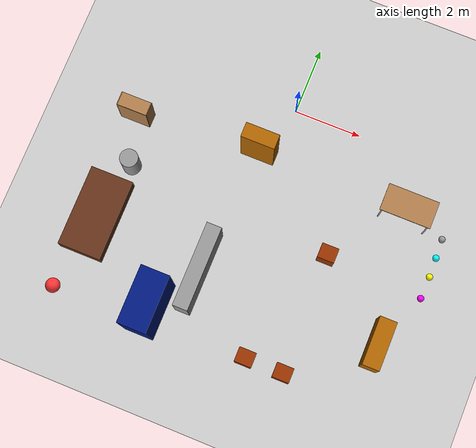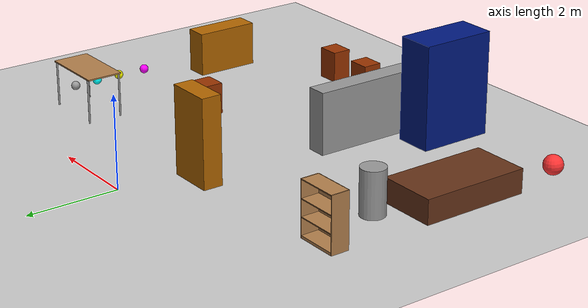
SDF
<sdf version="1.6">
 <world name="default">
  <model name="ground_plane">
   <static>1</static>
   <link name="link">
    <collision name="collision">
     <geometry><plane><normal>0 0 1</normal><size>100 100</size></plane></geometry>
     <surface><friction><ode><mu>100</mu><mu2>50</mu2></ode></friction></surface>
    </collision>
    <visual name="visual">
     <cast_shadows>0</cast_shadows>
     <geometry><plane><normal>0 0 1</normal><size>100 100</size></plane></geometry>
     <material>
      <script><uri>file://media/materials/scripts/gazebo.material</uri><name>Gazebo/Grey</name></script>
     </material>
    </visual>
   </link>
  </model>
  <model name="bookshelf_0">
   <static>1</static>
   <link name="link">
    <inertial><mass>1</mass></inertial>
    <collision name="back">
     <pose>0 0.005 0.6 0 -0 0</pose>
     <geometry><box><size>0.9 0.01 1.2</size></box></geometry>
    </collision>
    <visual name="visual1">
     <pose>0 0.005 0.6 0 -0 0</pose>
     <geometry><box><size>0.9 0.01 1.2</size></box></geometry>
     <material>
      <script><uri>file://media/materials/scripts/gazebo.material</uri><name>Gazebo/Wood</name></script>
     </material>
    </visual>
    <collision name="left_side">
     <pose>0.45 -0.195 0.6 0 -0 0</pose>
     <geometry><box><size>0.02 0.4 1.2</size></box></geometry>
    </collision>
    <visual name="visual2">
     <pose>0.45 -0.195 0.6 0 -0 0</pose>
     <geometry><box><size>0.02 0.4 1.2</size></box></geometry>
     <material>
      <script><uri>file://media/materials/scripts/gazebo.material</uri><name>Gazebo/Wood</name></script>
     </material>
    </visual>
    <collision name="right_side">
     <pose>-0.45 -0.195 0.6 0 -0 0</pose>
     <geometry><box><size>0.02 0.4 1.2</size></box></geometry>
    </collision>
    <visual name="visual3">
     <pose>-0.45 -0.195 0.6 0 -0 0</pose>
     <geometry><box><size>0.02 0.4 1.2</size></box></geometry>
     <material>
      <script><uri>file://media/materials/scripts/gazebo.material</uri><name>Gazebo/Wood</name></script>
     </material>
    </visual>
    <collision name="bottom">
     <pose>0 -0.195 0.03 0 -0 0</pose>
     <geometry><box><size>0.88 0.4 0.06</size></box></geometry>
    </collision>
    <visual name="visual4">
     <pose>0 -0.195 0.03 0 -0 0</pose>
     <geometry><box><size>0.88 0.4 0.06</size></box></geometry>
     <material>
      <script><uri>file://media/materials/scripts/gazebo.material</uri><name>Gazebo/Wood</name></script>
     </material>
    </visual>
    <collision name="top">
     <pose>0 -0.195 1.19 0 -0 0</pose>
     <geometry><box><size>0.88 0.4 0.02</size></box></geometry>
    </collision>
    <visual name="visual5">
     <pose>0 -0.195 1.19 0 -0 0</pose>
     <geometry><box><size>0.88 0.4 0.02</size></box></geometry>
     <material>
      <script><uri>file://media/materials/scripts/gazebo.material</uri><name>Gazebo/Wood</name></script>
     </material>
    </visual>
    <collision name="low_shelf">
     <pose>0 -0.195 0.43 0 -0 0</pose>
     <geometry><box><size>0.88 0.4 0.02</size></box></geometry>
    </collision>
    <visual name="visual6">
     <pose>0 -0.195 0.43 0 -0 0</pose>
     <geometry><box><size>0.88 0.4 0.02</size></box></geometry>
     <material>
      <script><uri>file://media/materials/scripts/gazebo.material</uri><name>Gazebo/Wood</name></script>
     </material>
    </visual>
    <collision name="high_shelf">
     <pose>0 -0.195 0.8 0 -0 0</pose>
     <geometry><box><size>0.88 0.4 0.02</size></box></geometry>
    </collision>
    <visual name="visual7">
     <pose>0 -0.195 0.8 0 -0 0</pose>
     <geometry><box><size>0.88 0.4 0.02</size></box></geometry>
     <material>
      <script><uri>file://media/materials/scripts/gazebo.material</uri><name>Gazebo/Wood</name></script>
     </material>
    </visual>
   </link>
   <pose>-4.25914 -2.02776 0 0 0 -3.14</pose>
  </model>
  <model name="my_ball4">
   <link name="link_0">
    <inertial>
     <mass>1</mass>
     <inertia><ixx>0.1</ixx><ixy>0</ixy><ixz>0</ixz><iyy>0.1</iyy><iyz>0</iyz><izz>0.1</izz></inertia>
    </inertial>
    <visual name="visual">
     <geometry><sphere><radius>0.1</radius></sphere></geometry>
     <material>
      <lighting>1</lighting>
      <script><uri>file://media/materials/scripts/gazebo.material</uri><name>Gazebo/Grey</name></script>
      <shader type="pixel"><normal_map>__default__</normal_map></shader>
      <ambient>1 1 0 1</ambient>
      <diffuse>1 1 0 1</diffuse>
      <specular>1 1 0 1</specular>
      <emissive>1 1 0 1</emissive>
     </material>
    </visual>
    <collision name="collision">
     <geometry><sphere><radius>0.1</radius></sphere></geometry>
     <surface>
      <friction>
       <ode><mu>1</mu><mu2>1</mu2><fdir1>0 0 0</fdir1><slip1>0</slip1><slip2>0</slip2></ode>
       <torsional>
        <coefficient>1</coefficient>
        <patch_radius>0</patch_radius>
        <surface_radius>0</surface_radius>
        <use_patch_radius>1</use_patch_radius>
        <ode><slip>0</slip></ode>
       </torsional>
      </friction>
      <bounce><restitution_coefficient>0</restitution_coefficient><threshold>1e+06</threshold></bounce>
      <contact>
       <collide_without_contact>0</collide_without_contact>
       <collide_without_contact_bitmask>1</collide_without_contact_bitmask>
       <collide_bitmask>1</collide_bitmask>
       <ode>
        <soft_cfm>0</soft_cfm>
        <soft_erp>0.2</soft_erp>
        <kp>1e+13</kp>
        <kd>1</kd>
        <max_vel>0.01</max_vel>
        <min_depth>0</min_depth>
       </ode>
       <bullet>
        <split_impulse>1</split_impulse>
        <split_impulse_penetration_threshold>-0.01</split_impulse_penetration_threshold>
        <soft_cfm>0</soft_cfm>
        <soft_erp>0.2</soft_erp>
        <kp>1e+13</kp>
        <kd>1</kd>
       </bullet>
      </contact>
     </surface>
    </collision>
   </link>
   <static>0</static>
   <pose>5.31832 -3.14691 0.1 0 -0 0</pose>
  </model>
  <model name="my_ball">
   <link name="link_0">
    <inertial>
     <mass>1</mass>
     <inertia><ixx>0.1</ixx><ixy>0</ixy><ixz>0</ixz><iyy>0.1</iyy><iyz>0</iyz><izz>0.1</izz></inertia>
    </inertial>
    <visual name="visual">
     <geometry><sphere><radius>0.1</radius></sphere></geometry>
     <material>
      <lighting>1</lighting>
      <script><uri>file://media/materials/scripts/gazebo.material</uri><name>Gazebo/Grey</name></script>
      <shader type="pixel"><normal_map>__default__</normal_map></shader>
      <ambient>1 1 1 1</ambient>
      <diffuse>1 1 1 1</diffuse>
      <specular>1 1 1 1</specular>
      <emissive>1 1 1 1</emissive>
     </material>
    </visual>
    <collision name="collision">
     <geometry><sphere><radius>0.1</radius></sphere></geometry>
     <surface>
      <friction>
       <ode><mu>1</mu><mu2>1</mu2><fdir1>0 0 0</fdir1><slip1>0</slip1><slip2>0</slip2></ode>
       <torsional>
        <coefficient>1</coefficient>
        <patch_radius>0</patch_radius>
        <surface_radius>0</surface_radius>
        <use_patch_radius>1</use_patch_radius>
        <ode><slip>0</slip></ode>
       </torsional>
      </friction>
      <bounce><restitution_coefficient>0</restitution_coefficient><threshold>1e+06</threshold></bounce>
      <contact>
       <collide_without_contact>0</collide_without_contact>
       <collide_without_contact_bitmask>1</collide_without_contact_bitmask>
       <collide_bitmask>1</collide_bitmask>
       <ode>
        <soft_cfm>0</soft_cfm>
        <soft_erp>0.2</soft_erp>
        <kp>1e+13</kp>
        <kd>1</kd>
        <max_vel>0.01</max_vel>
        <min_depth>0</min_depth>
       </ode>
       <bullet>
        <split_impulse>1</split_impulse>
        <split_impulse_penetration_threshold>-0.01</split_impulse_penetration_threshold>
        <soft_cfm>0</soft_cfm>
        <soft_erp>0.2</soft_erp>
        <kp>1e+13</kp>
        <kd>1</kd>
       </bullet>
      </contact>
     </surface>
    </collision>
   </link>
   <static>0</static>
   <pose>5.28145 -1.99887 0.1 0 -0 0</pose>
  </model>
  <model name="my_ball2">
   <link name="link_0">
    <inertial>
     <mass>1</mass>
     <inertia><ixx>0.1</ixx><ixy>0</ixy><ixz>0</ixz><iyy>0.1</iyy><iyz>0</iyz><izz>0.1</izz></inertia>
    </inertial>
    <visual name="visual">
     <geometry><sphere><radius>0.1</radius></sphere></geometry>
     <material>
      <lighting>1</lighting>
      <script><uri>file://media/materials/scripts/gazebo.material</uri><name>Gazebo/Grey</name></script>
      <shader type="pixel"><normal_map>__default__</normal_map></shader>
      <ambient>0 1 1 1</ambient>
      <diffuse>0 1 1 1</diffuse>
      <specular>0 1 1 1</specular>
      <emissive>0 1 1 1</emissive>
     </material>
    </visual>
    <collision name="collision">
     <geometry><sphere><radius>0.1</radius></sphere></geometry>
     <surface>
      <friction>
       <ode><mu>1</mu><mu2>1</mu2><fdir1>0 0 0</fdir1><slip1>0</slip1><slip2>0</slip2></ode>
       <torsional>
        <coefficient>1</coefficient>
        <patch_radius>0</patch_radius>
        <surface_radius>0</surface_radius>
        <use_patch_radius>1</use_patch_radius>
        <ode><slip>0</slip></ode>
       </torsional>
      </friction>
      <bounce><restitution_coefficient>0</restitution_coefficient><threshold>1e+06</threshold></bounce>
      <contact>
       <collide_without_contact>0</collide_without_contact>
       <collide_without_contact_bitmask>1</collide_without_contact_bitmask>
       <collide_bitmask>1</collide_bitmask>
       <ode>
        <soft_cfm>0</soft_cfm>
        <soft_erp>0.2</soft_erp>
        <kp>1e+13</kp>
        <kd>1</kd>
        <max_vel>0.01</max_vel>
        <min_depth>0</min_depth>
       </ode>
       <bullet>
        <split_impulse>1</split_impulse>
        <split_impulse_penetration_threshold>-0.01</split_impulse_penetration_threshold>
        <soft_cfm>0</soft_cfm>
        <soft_erp>0.2</soft_erp>
        <kp>1e+13</kp>
        <kd>1</kd>
       </bullet>
      </contact>
     </surface>
    </collision>
   </link>
   <static>0</static>
   <pose>5.30481 -2.56905 0.1 0 -0 0</pose>
  </model>
  <model name="my_ball3">
   <link name="link_0">
    <inertial>
     <mass>1</mass>
     <inertia><ixx>0.1</ixx><ixy>0</ixy><ixz>0</ixz><iyy>0.1</iyy><iyz>0</iyz><izz>0.1</izz></inertia>
    </inertial>
    <visual name="visual">
     <geometry><sphere><radius>0.1</radius></sphere></geometry>
     <material>
      <lighting>1</lighting>
      <script><uri>file://media/materials/scripts/gazebo.material</uri><name>Gazebo/Grey</name></script>
      <shader type="pixel"><normal_map>__default__</normal_map></shader>
      <ambient>1 0 1 1</ambient>
      <diffuse>1 0 1 1</diffuse>
      <specular>1 0 1 1</specular>
      <emissive>1 0 1 1</emissive>
     </material>
    </visual>
    <collision name="collision">
     <geometry><sphere><radius>0.1</radius></sphere></geometry>
     <surface>
      <friction>
       <ode><mu>1</mu><mu2>1</mu2><fdir1>0 0 0</fdir1><slip1>0</slip1><slip2>0</slip2></ode>
       <torsional>
        <coefficient>1</coefficient>
        <patch_radius>0</patch_radius>
        <surface_radius>0</surface_radius>
        <use_patch_radius>1</use_patch_radius>
        <ode><slip>0</slip></ode>
       </torsional>
      </friction>
      <bounce><restitution_coefficient>0</restitution_coefficient><threshold>1e+06</threshold></bounce>
      <contact>
       <collide_without_contact>0</collide_without_contact>
       <collide_without_contact_bitmask>1</collide_without_contact_bitmask>
       <collide_bitmask>1</collide_bitmask>
       <ode>
        <soft_cfm>0</soft_cfm>
        <soft_erp>0.2</soft_erp>
        <kp>1e+13</kp>
        <kd>1</kd>
        <max_vel>0.01</max_vel>
        <min_depth>0</min_depth>
       </ode>
       <bullet>
        <split_impulse>1</split_impulse>
        <split_impulse_penetration_threshold>-0.01</split_impulse_penetration_threshold>
        <soft_cfm>0</soft_cfm>
        <soft_erp>0.2</soft_erp>
        <kp>1e+13</kp>
        <kd>1</kd>
       </bullet>
      </contact>
     </surface>
    </collision>
   </link>
   <static>0</static>
   <pose>5.29733 -3.81614 0.1 0 -0 0</pose>
  </model>
  <model name="unit_cylinder1">
   <link name="link">
    <inertial>
     <mass>1</mass>
     <inertia><ixx>0.145833</ixx><ixy>0</ixy><ixz>0</ixz><iyy>0.145833</iyy><iyz>0</iyz><izz>0.125</izz></inertia>
    </inertial>
    <visual name="visual">
     <geometry><cylinder><radius>0.267809</radius><length>1</length></cylinder></geometry>
     <material>
      <script><name>Gazebo/Grey</name><uri>file://media/materials/scripts/gazebo.material</uri></script>
      <shader type="pixel"><normal_map>__default__</normal_map></shader>
      <ambient>1 1 1 1</ambient>
      <diffuse>0.7 0.7 0.7 1</diffuse>
      <specular>0.01 0.01 0.01 1</specular>
      <emissive>0 0 0 1</emissive>
     </material>
    </visual>
    <collision name="collision">
     <geometry><cylinder><radius>0.267809</radius><length>1</length></cylinder></geometry>
     <surface>
      <friction>
       <ode><mu>1</mu><mu2>1</mu2><fdir1>0 0 0</fdir1><slip1>0</slip1><slip2>0</slip2></ode>
       <torsional>
        <coefficient>1</coefficient>
        <patch_radius>0</patch_radius>
        <surface_radius>0</surface_radius>
        <use_patch_radius>1</use_patch_radius>
        <ode><slip>0</slip></ode>
       </torsional>
      </friction>
      <bounce><restitution_coefficient>0</restitution_coefficient><threshold>1e+06</threshold></bounce>
      <contact>
       <collide_without_contact>0</collide_without_contact>
       <collide_without_contact_bitmask>1</collide_without_contact_bitmask>
       <collide_bitmask>1</collide_bitmask>
       <ode>
        <soft_cfm>0</soft_cfm>
        <soft_erp>0.2</soft_erp>
        <kp>1e+13</kp>
        <kd>1</kd>
        <max_vel>0.01</max_vel>
        <min_depth>0</min_depth>
       </ode>
       <bullet>
        <split_impulse>1</split_impulse>
        <split_impulse_penetration_threshold>-0.01</split_impulse_penetration_threshold>
        <soft_cfm>0</soft_cfm>
        <soft_erp>0.2</soft_erp>
        <kp>1e+13</kp>
        <kd>1</kd>
       </bullet>
      </contact>
     </surface>
    </collision>
   </link>
   <static>0</static>
   <pose>-3.81675 -3.30873 0.499992 1e-06 -0 -3e-06</pose>
  </model>
  <model name="unit_sphere3">
   <link name="link">
    <inertial>
     <mass>1</mass>
     <inertia><ixx>0.1</ixx><ixy>0</ixy><ixz>0</ixz><iyy>0.1</iyy><iyz>0</iyz><izz>0.1</izz></inertia>
    </inertial>
    <visual name="visual">
     <geometry><sphere><radius>0.21386</radius></sphere></geometry>
     <material>
      <script><name>Gazebo/Grey</name><uri>file://media/materials/scripts/gazebo.material</uri></script>
      <shader type="pixel"><normal_map>__default__</normal_map></shader>
      <ambient>1 0.2 0.2 1</ambient>
      <diffuse>0.7 0.7 0.7 1</diffuse>
      <specular>0.01 0.01 0.01 1</specular>
      <emissive>0 0 0 1</emissive>
     </material>
    </visual>
    <collision name="collision">
     <geometry><sphere><radius>0.21386</radius></sphere></geometry>
     <surface>
      <friction>
       <ode><mu>1</mu><mu2>1</mu2><fdir1>0 0 0</fdir1><slip1>0</slip1><slip2>0</slip2></ode>
       <torsional>
        <coefficient>1</coefficient>
        <patch_radius>0</patch_radius>
        <surface_radius>0</surface_radius>
        <use_patch_radius>1</use_patch_radius>
        <ode><slip>0</slip></ode>
       </torsional>
      </friction>
      <bounce><restitution_coefficient>0</restitution_coefficient><threshold>1e+06</threshold></bounce>
      <contact>
       <collide_without_contact>0</collide_without_contact>
       <collide_without_contact_bitmask>1</collide_without_contact_bitmask>
       <collide_bitmask>1</collide_bitmask>
       <ode>
        <soft_cfm>0</soft_cfm>
        <soft_erp>0.2</soft_erp>
        <kp>1e+13</kp>
        <kd>1</kd>
        <max_vel>0.01</max_vel>
        <min_depth>0</min_depth>
       </ode>
       <bullet>
        <split_impulse>1</split_impulse>
        <split_impulse_penetration_threshold>-0.01</split_impulse_penetration_threshold>
        <soft_cfm>0</soft_cfm>
        <soft_erp>0.2</soft_erp>
        <kp>1e+13</kp>
        <kd>1</kd>
       </bullet>
      </contact>
     </surface>
    </collision>
   </link>
   <static>0</static>
   <pose>-4.50712 -7.37439 0.21386 0.000335 0.077391 -0.000314</pose>
  </model>
  <model name="unit_box_7">
   <link name="link">
    <inertial>
     <mass>1</mass>
     <inertia>
      <ixx>0.166667</ixx>
      <ixy>0</ixy>
      <ixz>0</ixz>
      <iyy>0.166667</iyy>
      <iyz>0</iyz>
      <izz>0.166667</izz>
     </inertia>
    </inertial>
    <visual name="visual">
     <geometry><box><size>1 0.432594 1.9264</size></box></geometry>
     <material>
      <script><name>Gazebo/Grey</name><uri>file://media/materials/scripts/gazebo.material</uri></script>
      <shader type="pixel"><normal_map>__default__</normal_map></shader>
      <ambient>0.7 0.4 0 1</ambient>
      <diffuse>0.7 0.7 0.7 1</diffuse>
      <specular>0.01 0.01 0.01 1</specular>
      <emissive>0 0 0 1</emissive>
     </material>
    </visual>
    <collision name="collision">
     <geometry><box><size>1 0.432594 1.9264</size></box></geometry>
     <surface>
      <friction>
       <ode><mu>1</mu><mu2>1</mu2><fdir1>0 0 0</fdir1><slip1>0</slip1><slip2>0</slip2></ode>
       <torsional>
        <coefficient>1</coefficient>
        <patch_radius>0</patch_radius>
        <surface_radius>0</surface_radius>
        <use_patch_radius>1</use_patch_radius>
        <ode><slip>0</slip></ode>
       </torsional>
      </friction>
      <bounce><restitution_coefficient>0</restitution_coefficient><threshold>1e+06</threshold></bounce>
      <contact>
       <collide_without_contact>0</collide_without_contact>
       <collide_without_contact_bitmask>1</collide_without_contact_bitmask>
       <collide_bitmask>1</collide_bitmask>
       <ode>
        <soft_cfm>0</soft_cfm>
        <soft_erp>0.2</soft_erp>
        <kp>1e+13</kp>
        <kd>1</kd>
        <max_vel>0.01</max_vel>
        <min_depth>0</min_depth>
       </ode>
       <bullet>
        <split_impulse>1</split_impulse>
        <split_impulse_penetration_threshold>-0.01</split_impulse_penetration_threshold>
        <soft_cfm>0</soft_cfm>
        <soft_erp>0.2</soft_erp>
        <kp>1e+13</kp>
        <kd>1</kd>
       </bullet>
      </contact>
     </surface>
    </collision>
   </link>
   <static>0</static>
   <pose>-0.533852 -1.54801 0.963199 -1e-06 -2e-06 0.0006</pose>
  </model>
  <model name="unit_box_2_clone">
   <link name="link">
    <inertial>
     <mass>1</mass>
     <inertia>
      <ixx>0.166667</ixx>
      <ixy>0</ixy>
      <ixz>0</ixz>
      <iyy>0.166667</iyy>
      <iyz>0</iyz>
      <izz>0.166667</izz>
     </inertia>
    </inertial>
    <visual name="visual">
     <geometry><box><size>0.832941 1.65896 2.28864</size></box></geometry>
     <material>
      <script><name>Gazebo/Grey</name><uri>file://media/materials/scripts/gazebo.material</uri></script>
      <shader type="pixel"><normal_map>__default__</normal_map></shader>
      <ambient>0 0.1 0.5 1</ambient>
      <diffuse>0.7 0.7 0.7 1</diffuse>
      <specular>0.01 0.01 0.01 1</specular>
      <emissive>0 0 0 1</emissive>
     </material>
    </visual>
    <collision name="collision">
     <geometry><box><size>0.832941 1.65896 2.28864</size></box></geometry>
     <surface>
      <friction>
       <ode><mu>1</mu><mu2>1</mu2><fdir1>0 0 0</fdir1><slip1>0</slip1><slip2>0</slip2></ode>
       <torsional>
        <coefficient>1</coefficient>
        <patch_radius>0</patch_radius>
        <surface_radius>0</surface_radius>
        <use_patch_radius>1</use_patch_radius>
        <ode><slip>0</slip></ode>
       </torsional>
      </friction>
      <bounce><restitution_coefficient>0</restitution_coefficient><threshold>1e+06</threshold></bounce>
      <contact>
       <collide_without_contact>0</collide_without_contact>
       <collide_without_contact_bitmask>1</collide_without_contact_bitmask>
       <collide_bitmask>1</collide_bitmask>
       <ode>
        <soft_cfm>0</soft_cfm>
        <soft_erp>0.2</soft_erp>
        <kp>1e+13</kp>
        <kd>1</kd>
        <max_vel>0.01</max_vel>
        <min_depth>0</min_depth>
       </ode>
       <bullet>
        <split_impulse>1</split_impulse>
        <split_impulse_penetration_threshold>-0.01</split_impulse_penetration_threshold>
        <soft_cfm>0</soft_cfm>
        <soft_erp>0.2</soft_erp>
        <kp>1e+13</kp>
        <kd>1</kd>
       </bullet>
      </contact>
     </surface>
    </collision>
   </link>
   <static>0</static>
   <pose>-1.70964 -6.90806 1.14432 5e-06 -0 -0.0006</pose>
  </model>
  <model name="unit_box_5">
   <link name="link">
    <inertial>
     <mass>1</mass>
     <inertia>
      <ixx>0.166667</ixx>
      <ixy>0</ixy>
      <ixz>0</ixz>
      <iyy>0.166667</iyy>
      <iyz>0</iyz>
      <izz>0.166667</izz>
     </inertia>
    </inertial>
    <visual name="visual">
     <geometry><box><size>0.506367 1.4246 1</size></box></geometry>
     <material>
      <script><name>Gazebo/Grey</name><uri>file://media/materials/scripts/gazebo.material</uri></script>
      <shader type="pixel"><normal_map>__default__</normal_map></shader>
      <ambient>0.7 0.4 0 1</ambient>
      <diffuse>0.7 0.7 0.7 1</diffuse>
      <specular>0.01 0.01 0.01 1</specular>
      <emissive>0 0 0 1</emissive>
     </material>
    </visual>
    <collision name="collision">
     <geometry><box><size>0.506367 1.4246 1</size></box></geometry>
     <surface>
      <friction>
       <ode><mu>1</mu><mu2>1</mu2><fdir1>0 0 0</fdir1><slip1>0</slip1><slip2>0</slip2></ode>
       <torsional>
        <coefficient>1</coefficient>
        <patch_radius>0</patch_radius>
        <surface_radius>0</surface_radius>
        <use_patch_radius>1</use_patch_radius>
        <ode><slip>0</slip></ode>
       </torsional>
      </friction>
      <bounce><restitution_coefficient>0</restitution_coefficient><threshold>1e+06</threshold></bounce>
      <contact>
       <collide_without_contact>0</collide_without_contact>
       <collide_without_contact_bitmask>1</collide_without_contact_bitmask>
       <collide_bitmask>1</collide_bitmask>
       <ode>
        <soft_cfm>0</soft_cfm>
        <soft_erp>0.2</soft_erp>
        <kp>1e+13</kp>
        <kd>1</kd>
        <max_vel>0.01</max_vel>
        <min_depth>0</min_depth>
       </ode>
       <bullet>
        <split_impulse>1</split_impulse>
        <split_impulse_penetration_threshold>-0.01</split_impulse_penetration_threshold>
        <soft_cfm>0</soft_cfm>
        <soft_erp>0.2</soft_erp>
        <kp>1e+13</kp>
        <kd>1</kd>
       </bullet>
      </contact>
     </surface>
    </collision>
   </link>
   <static>0</static>
   <pose>4.58875 -5.52774 0.499995 -7e-06 -0 -4e-06</pose>
  </model>
  <model name="unit_box_4">
   <link name="link">
    <inertial>
     <mass>1</mass>
     <inertia>
      <ixx>0.166667</ixx>
      <ixy>0</ixy>
      <ixz>0</ixz>
      <iyy>0.166667</iyy>
      <iyz>0</iyz>
      <izz>0.166667</izz>
     </inertia>
    </inertial>
    <visual name="visual">
     <geometry><box><size>0.444921 2.46886 1.37129</size></box></geometry>
     <material>
      <script><name>Gazebo/Grey</name><uri>file://media/materials/scripts/gazebo.material</uri></script>
      <shader type="pixel"><normal_map>__default__</normal_map></shader>
      <ambient>0 0 0 1</ambient>
      <diffuse>0.7 0.7 0.7 1</diffuse>
      <specular>0.01 0.01 0.01 1</specular>
      <emissive>0 0 0 1</emissive>
     </material>
    </visual>
    <collision name="collision">
     <geometry><box><size>0.444921 2.46886 1.37129</size></box></geometry>
     <surface>
      <friction>
       <ode><mu>1</mu><mu2>1</mu2><fdir1>0 0 0</fdir1><slip1>0</slip1><slip2>0</slip2></ode>
       <torsional>
        <coefficient>1</coefficient>
        <patch_radius>0</patch_radius>
        <surface_radius>0</surface_radius>
        <use_patch_radius>1</use_patch_radius>
        <ode><slip>0</slip></ode>
       </torsional>
      </friction>
      <bounce><restitution_coefficient>0</restitution_coefficient><threshold>1e+06</threshold></bounce>
      <contact>
       <collide_without_contact>0</collide_without_contact>
       <collide_without_contact_bitmask>1</collide_without_contact_bitmask>
       <collide_bitmask>1</collide_bitmask>
       <ode>
        <soft_cfm>0</soft_cfm>
        <soft_erp>0.2</soft_erp>
        <kp>1e+13</kp>
        <kd>1</kd>
        <max_vel>0.01</max_vel>
        <min_depth>0</min_depth>
       </ode>
       <bullet>
        <split_impulse>1</split_impulse>
        <split_impulse_penetration_threshold>-0.01</split_impulse_penetration_threshold>
        <soft_cfm>0</soft_cfm>
        <soft_erp>0.2</soft_erp>
        <kp>1e+13</kp>
        <kd>1</kd>
       </bullet>
      </contact>
     </surface>
    </collision>
   </link>
   <static>0</static>
   <pose>-0.815496 -5.47024 0.685615 -2.4e-05 -0 -0.003548</pose>
  </model>
  <model name="table">
   <static>1</static>
   <link name="link">
    <collision name="surface">
     <pose>0 0 1 0 -0 0</pose>
     <geometry><box><size>1.5 0.8 0.03</size></box></geometry>
     <surface><friction><ode><mu>0.6</mu><mu2>0.6</mu2></ode></friction></surface>
    </collision>
    <visual name="visual1">
     <pose>0 0 1 0 -0 0</pose>
     <geometry><box><size>1.5 0.8 0.03</size></box></geometry>
     <material>
      <script><uri>file://media/materials/scripts/gazebo.material</uri><name>Gazebo/Wood</name></script>
     </material>
    </visual>
    <collision name="front_left_leg">
     <pose>0.68 0.38 0.5 0 -0 0</pose>
     <geometry><cylinder><radius>0.02</radius><length>1</length></cylinder></geometry>
    </collision>
    <visual name="front_left_leg">
     <pose>0.68 0.38 0.5 0 -0 0</pose>
     <geometry><cylinder><radius>0.02</radius><length>1</length></cylinder></geometry>
     <material>
      <script><uri>file://media/materials/scripts/gazebo.material</uri><name>Gazebo/Grey</name></script>
     </material>
    </visual>
    <collision name="front_right_leg">
     <pose>0.68 -0.38 0.5 0 -0 0</pose>
     <geometry><cylinder><radius>0.02</radius><length>1</length></cylinder></geometry>
    </collision>
    <visual name="front_right_leg">
     <pose>0.68 -0.38 0.5 0 -0 0</pose>
     <geometry><cylinder><radius>0.02</radius><length>1</length></cylinder></geometry>
     <material>
      <script><uri>file://media/materials/scripts/gazebo.material</uri><name>Gazebo/Grey</name></script>
     </material>
    </visual>
    <collision name="back_right_leg">
     <pose>-0.68 -0.38 0.5 0 -0 0</pose>
     <geometry><cylinder><radius>0.02</radius><length>1</length></cylinder></geometry>
    </collision>
    <visual name="back_right_leg">
     <pose>-0.68 -0.38 0.5 0 -0 0</pose>
     <geometry><cylinder><radius>0.02</radius><length>1</length></cylinder></geometry>
     <material>
      <script><uri>file://media/materials/scripts/gazebo.material</uri><name>Gazebo/Grey</name></script>
     </material>
    </visual>
    <collision name="back_left_leg">
     <pose>-0.68 0.38 0.5 0 -0 0</pose>
     <geometry><cylinder><radius>0.02</radius><length>1</length></cylinder></geometry>
    </collision>
    <visual name="back_left_leg">
     <pose>-0.68 0.38 0.5 0 -0 0</pose>
     <geometry><cylinder><radius>0.02</radius><length>1</length></cylinder></geometry>
     <material>
      <script><uri>file://media/materials/scripts/gazebo.material</uri><name>Gazebo/Grey</name></script>
     </material>
    </visual>
   </link>
   <pose>4.01631 -1.63966 0 0 -0 0</pose>
  </model>
  <model name="unit_box_6_clone_clone">
   <link name="link">
    <inertial>
     <mass>1</mass>
     <inertia>
      <ixx>0.166667</ixx>
      <ixy>0</ixy>
      <ixz>0</ixz>
      <iyy>0.166667</iyy>
      <iyz>0</iyz>
      <izz>0.166667</izz>
     </inertia>
    </inertial>
    <visual name="visual">
     <geometry><box><size>0.500543 0.43047 0.701957</size></box></geometry>
     <material>
      <script><name>Gazebo/Grey</name><uri>file://media/materials/scripts/gazebo.material</uri></script>
      <shader type="pixel"><normal_map>__default__</normal_map></shader>
      <ambient>0.6 0.2 0 1</ambient>
      <diffuse>0.7 0.7 0.7 1</diffuse>
      <specular>0.01 0.01 0.01 1</specular>
      <emissive>0 0 0 1</emissive>
     </material>
    </visual>
    <collision name="collision">
     <geometry><box><size>0.500543 0.43047 0.701957</size></box></geometry>
     <surface>
      <friction>
       <ode><mu>1</mu><mu2>1</mu2><fdir1>0 0 0</fdir1><slip1>0</slip1><slip2>0</slip2></ode>
       <torsional>
        <coefficient>1</coefficient>
        <patch_radius>0</patch_radius>
        <surface_radius>0</surface_radius>
        <use_patch_radius>1</use_patch_radius>
        <ode><slip>0</slip></ode>
       </torsional>
      </friction>
      <bounce><restitution_coefficient>0</restitution_coefficient><threshold>1e+06</threshold></bounce>
      <contact>
       <collide_without_contact>0</collide_without_contact>
       <collide_without_contact_bitmask>1</collide_without_contact_bitmask>
       <collide_bitmask>1</collide_bitmask>
       <ode>
        <soft_cfm>0</soft_cfm>
        <soft_erp>0.2</soft_erp>
        <kp>1e+13</kp>
        <kd>1</kd>
        <max_vel>0.01</max_vel>
        <min_depth>0</min_depth>
       </ode>
       <bullet>
        <split_impulse>1</split_impulse>
        <split_impulse_penetration_threshold>-0.01</split_impulse_penetration_threshold>
        <soft_cfm>0</soft_cfm>
        <soft_erp>0.2</soft_erp>
        <kp>1e+13</kp>
        <kd>1</kd>
       </bullet>
      </contact>
     </surface>
    </collision>
   </link>
   <static>0</static>
   <pose>2.43219 -7.23523 0.350978 0 0 -4.8e-05</pose>
  </model>
  <model name="unit_box_6_clone_clone_clone">
   <link name="link">
    <inertial>
     <mass>1</mass>
     <inertia>
      <ixx>0.166667</ixx>
      <ixy>0</ixy>
      <ixz>0</ixz>
      <iyy>0.166667</iyy>
      <iyz>0</iyz>
      <izz>0.166667</izz>
     </inertia>
    </inertial>
    <visual name="visual">
     <geometry><box><size>0.500543 0.43047 0.701957</size></box></geometry>
     <material>
      <script><name>Gazebo/Grey</name><uri>file://media/materials/scripts/gazebo.material</uri></script>
      <shader type="pixel"><normal_map>__default__</normal_map></shader>
      <ambient>0.6 0.2 0 1</ambient>
      <diffuse>0.7 0.7 0.7 1</diffuse>
      <specular>0.01 0.01 0.01 1</specular>
      <emissive>0 0 0 1</emissive>
     </material>
    </visual>
    <collision name="collision">
     <geometry><box><size>0.500543 0.43047 0.701957</size></box></geometry>
     <surface>
      <friction>
       <ode><mu>1</mu><mu2>1</mu2><fdir1>0 0 0</fdir1><slip1>0</slip1><slip2>0</slip2></ode>
       <torsional>
        <coefficient>1</coefficient>
        <patch_radius>0</patch_radius>
        <surface_radius>0</surface_radius>
        <use_patch_radius>1</use_patch_radius>
        <ode><slip>0</slip></ode>
       </torsional>
      </friction>
      <bounce><restitution_coefficient>0</restitution_coefficient><threshold>1e+06</threshold></bounce>
      <contact>
       <collide_without_contact>0</collide_without_contact>
       <collide_without_contact_bitmask>1</collide_without_contact_bitmask>
       <collide_bitmask>1</collide_bitmask>
       <ode>
        <soft_cfm>0</soft_cfm>
        <soft_erp>0.2</soft_erp>
        <kp>1e+13</kp>
        <kd>1</kd>
        <max_vel>0.01</max_vel>
        <min_depth>0</min_depth>
       </ode>
       <bullet>
        <split_impulse>1</split_impulse>
        <split_impulse_penetration_threshold>-0.01</split_impulse_penetration_threshold>
        <soft_cfm>0</soft_cfm>
        <soft_erp>0.2</soft_erp>
        <kp>1e+13</kp>
        <kd>1</kd>
       </bullet>
      </contact>
     </surface>
    </collision>
   </link>
   <static>0</static>
   <pose>1.31169 -7.23109 0.350978 0 0 -4.8e-05</pose>
  </model>
  <model name="unit_box_6_clone_clone_clone_0">
   <link name="link">
    <inertial>
     <mass>1</mass>
     <inertia>
      <ixx>0.166667</ixx>
      <ixy>0</ixy>
      <ixz>0</ixz>
      <iyy>0.166667</iyy>
      <iyz>0</iyz>
      <izz>0.166667</izz>
     </inertia>
    </inertial>
    <visual name="visual">
     <geometry><box><size>0.500541 0.43047 0.701957</size></box></geometry>
     <material>
      <script><name>Gazebo/Grey</name><uri>file://media/materials/scripts/gazebo.material</uri></script>
      <shader type="pixel"><normal_map>__default__</normal_map></shader>
      <ambient>0.6 0.2 0 1</ambient>
      <diffuse>0.7 0.7 0.7 1</diffuse>
      <specular>0.01 0.01 0.01 1</specular>
      <emissive>0 0 0 1</emissive>
     </material>
    </visual>
    <collision name="collision">
     <geometry><box><size>0.500541 0.43047 0.701957</size></box></geometry>
     <surface>
      <friction>
       <ode><mu>1</mu><mu2>1</mu2><fdir1>0 0 0</fdir1><slip1>0</slip1><slip2>0</slip2></ode>
       <torsional>
        <coefficient>1</coefficient>
        <patch_radius>0</patch_radius>
        <surface_radius>0</surface_radius>
        <use_patch_radius>1</use_patch_radius>
        <ode><slip>0</slip></ode>
       </torsional>
      </friction>
      <bounce><restitution_coefficient>0</restitution_coefficient><threshold>1e+06</threshold></bounce>
      <contact>
       <collide_without_contact>0</collide_without_contact>
       <collide_without_contact_bitmask>1</collide_without_contact_bitmask>
       <collide_bitmask>1</collide_bitmask>
       <ode>
        <soft_cfm>0</soft_cfm>
        <soft_erp>0.2</soft_erp>
        <kp>1e+13</kp>
        <kd>1</kd>
        <max_vel>0.01</max_vel>
        <min_depth>0</min_depth>
       </ode>
       <bullet>
        <split_impulse>1</split_impulse>
        <split_impulse_penetration_threshold>-0.01</split_impulse_penetration_threshold>
        <soft_cfm>0</soft_cfm>
        <soft_erp>0.2</soft_erp>
        <kp>1e+13</kp>
        <kd>1</kd>
       </bullet>
      </contact>
     </surface>
    </collision>
   </link>
   <static>0</static>
   <pose>2.38699 -3.67709 0.350978 0 0 -4.8e-05</pose>
  </model>
  <model name="unit_box_1_clone">
   <link name="link">
    <inertial>
     <mass>1</mass>
     <inertia>
      <ixx>0.166667</ixx>
      <ixy>0</ixy>
      <ixz>0</ixz>
      <iyy>0.166667</iyy>
      <iyz>0</iyz>
      <izz>0.166667</izz>
     </inertia>
    </inertial>
    <visual name="visual">
     <geometry><box><size>1.27466 2.40736 0.534529</size></box></geometry>
     <material>
      <script><name>Gazebo/Grey</name><uri>file://media/materials/scripts/gazebo.material</uri></script>
      <shader type="pixel"><normal_map>__default__</normal_map></shader>
      <ambient>0.4 0.2 0.1 1</ambient>
      <diffuse>0.7 0.7 0.7 1</diffuse>
      <specular>0.01 0.01 0.01 1</specular>
      <emissive>0 0 0 1</emissive>
     </material>
    </visual>
    <collision name="collision">
     <geometry><box><size>1.27466 2.40736 0.534529</size></box></geometry>
     <surface>
      <friction>
       <ode><mu>1</mu><mu2>1</mu2><fdir1>0 0 0</fdir1><slip1>0</slip1><slip2>0</slip2></ode>
       <torsional>
        <coefficient>1</coefficient>
        <patch_radius>0</patch_radius>
        <surface_radius>0</surface_radius>
        <use_patch_radius>1</use_patch_radius>
        <ode><slip>0</slip></ode>
       </torsional>
      </friction>
      <bounce><restitution_coefficient>0</restitution_coefficient><threshold>1e+06</threshold></bounce>
      <contact>
       <collide_without_contact>0</collide_without_contact>
       <collide_without_contact_bitmask>1</collide_without_contact_bitmask>
       <collide_bitmask>1</collide_bitmask>
       <ode>
        <soft_cfm>0</soft_cfm>
        <soft_erp>0.2</soft_erp>
        <kp>1e+13</kp>
        <kd>1</kd>
        <max_vel>0.01</max_vel>
        <min_depth>0</min_depth>
       </ode>
       <bullet>
        <split_impulse>1</split_impulse>
        <split_impulse_penetration_threshold>-0.01</split_impulse_penetration_threshold>
        <soft_cfm>0</soft_cfm>
        <soft_erp>0.2</soft_erp>
        <kp>1e+13</kp>
        <kd>1</kd>
       </bullet>
      </contact>
     </surface>
    </collision>
   </link>
   <static>0</static>
   <pose>-4.15899 -5.04265 0.26726 -0 -8e-06 3.7e-05</pose>
  </model>
 </world>
</sdf>
